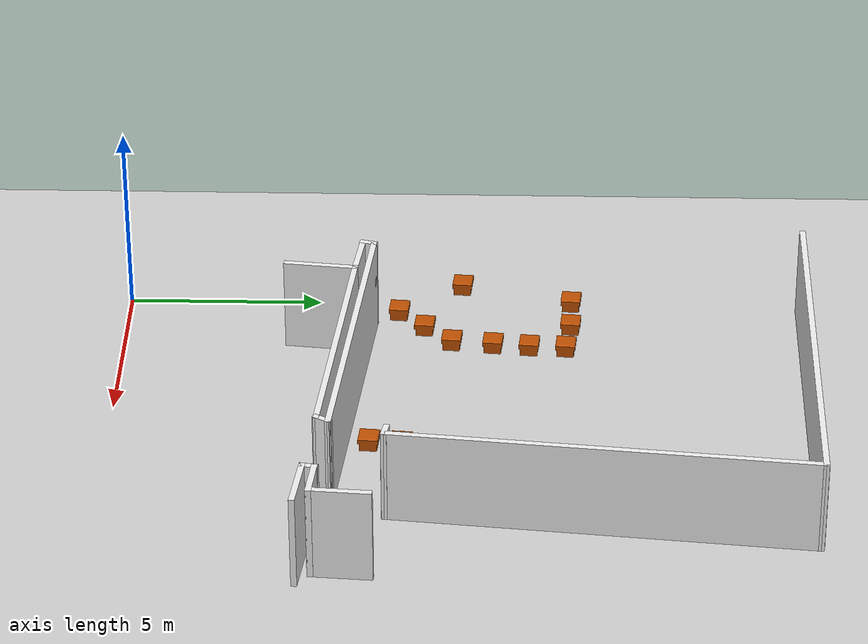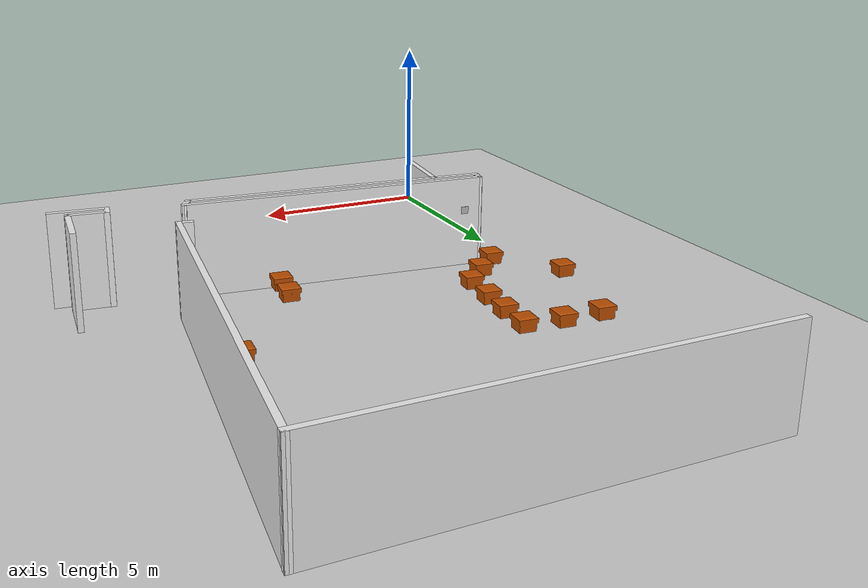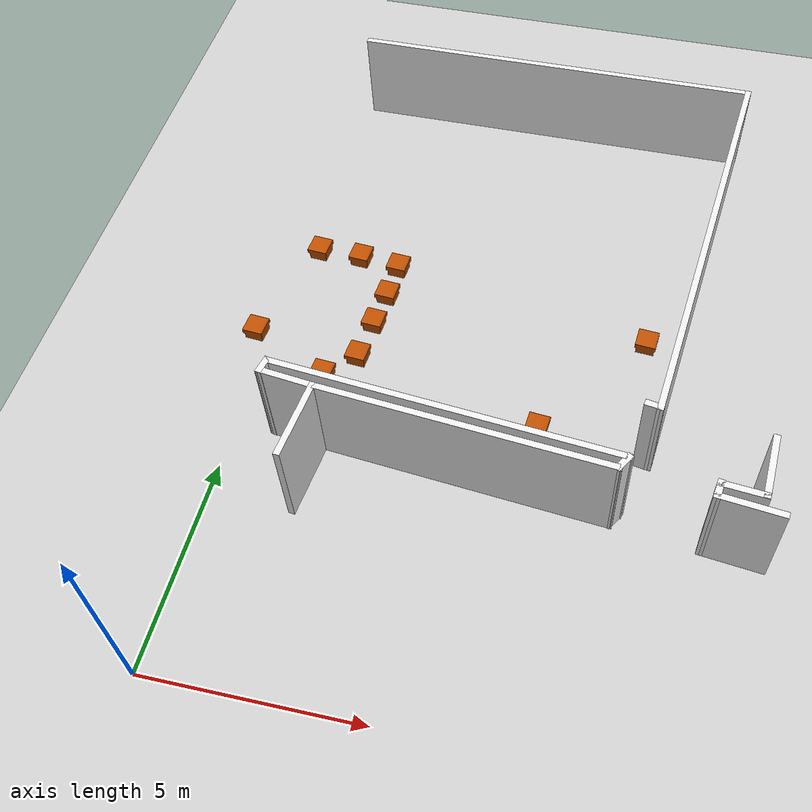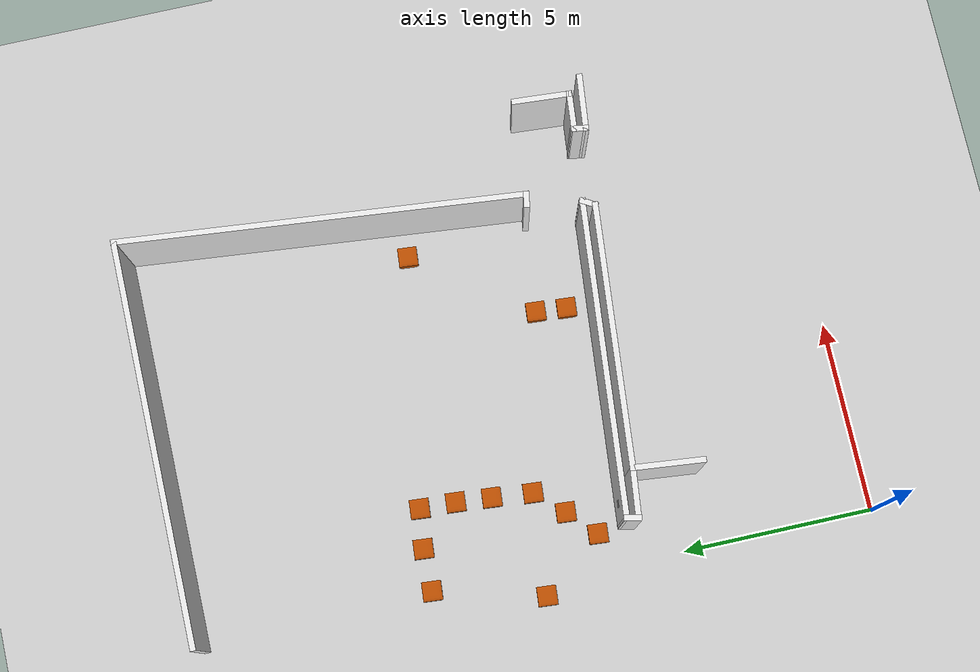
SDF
<sdf version="1.6">
 <world name="default">
  <model name="ground_plane">
   <static>1</static>
   <link name="link">
    <collision name="collision">
     <geometry><plane><normal>0 0 1</normal><size>100 100</size></plane></geometry>
     <surface><friction><ode><mu>100</mu><mu2>50</mu2></ode></friction></surface>
    </collision>
    <visual name="visual">
     <cast_shadows>0</cast_shadows>
     <geometry><plane><normal>0 0 1</normal><size>100 100</size></plane></geometry>
     <material>
      <script><uri>file://media/materials/scripts/gazebo.material</uri><name>Gazebo/Grey</name></script>
     </material>
    </visual>
   </link>
  </model>
  <model name="ucu_basic_frame.world">
   <link name="Wall_264">
    <pose>0.222214 2.68141 0 0 0 -1.79253</pose>
    <visual name="Wall_264_Visual">
     <pose>0 0 1.25 0 -0 0</pose>
     <geometry><box><size>0.445131 0.15 2.5</size></box></geometry>
     <material>
      <script><uri>file://media/materials/scripts/gazebo.material</uri><name>Gazebo/White</name></script>
      <ambient>1 1 1 1</ambient>
      <diffuse>1 1 1 1</diffuse>
      <specular>0 0 0 1</specular>
      <emissive>0 0 0 1</emissive>
     </material>
     <meta><layer>0</layer></meta>
    </visual>
    <collision name="Wall_264_Collision">
     <pose>0 0 1.25 0 -0 0</pose>
     <geometry><box><size>0.445131 0.15 2.5</size></box></geometry>
     <surface>
      <friction>
       <ode><mu>1</mu><mu2>1</mu2><fdir1>0 0 0</fdir1><slip1>0</slip1><slip2>0</slip2></ode>
       <torsional>
        <coefficient>1</coefficient>
        <patch_radius>0</patch_radius>
        <surface_radius>0</surface_radius>
        <use_patch_radius>1</use_patch_radius>
        <ode><slip>0</slip></ode>
       </torsional>
      </friction>
      <bounce><restitution_coefficient>0</restitution_coefficient><threshold>1e+06</threshold></bounce>
      <contact>
       <collide_without_contact>0</collide_without_contact>
       <collide_without_contact_bitmask>1</collide_without_contact_bitmask>
       <collide_bitmask>1</collide_bitmask>
       <ode>
        <soft_cfm>0</soft_cfm>
        <soft_erp>0.2</soft_erp>
        <kp>1e+13</kp>
        <kd>1</kd>
        <max_vel>0.01</max_vel>
        <min_depth>0</min_depth>
       </ode>
       <bullet>
        <split_impulse>1</split_impulse>
        <split_impulse_penetration_threshold>-0.01</split_impulse_penetration_threshold>
        <soft_cfm>0</soft_cfm>
        <soft_erp>0.2</soft_erp>
        <kp>1e+13</kp>
        <kd>1</kd>
       </bullet>
      </contact>
     </surface>
    </collision>
   </link>
   <link name="Wall_265">
    <pose>0.817825 2.46551 0 0 0 -0.1169</pose>
    <inertial>
     <mass>1</mass>
     <inertia><ixx>1</ixx><ixy>0</ixy><ixz>0</ixz><iyy>1</iyy><iyz>0</iyz><izz>1</izz></inertia>
    </inertial>
    <visual name="Wall_265_Visual">
     <pose>0 0 1.25 0 -0 0</pose>
     <geometry><box><size>1.38367 0.15 2.5</size></box></geometry>
     <material>
      <script><uri>file://media/materials/scripts/gazebo.material</uri><name>Gazebo/White</name></script>
      <ambient>1 1 1 1</ambient>
      <diffuse>1 1 1 1</diffuse>
      <specular>0 0 0 1</specular>
      <emissive>0 0 0 1</emissive>
      <shader type="vertex"><normal_map>__default__</normal_map></shader>
     </material>
     <meta><layer>0</layer></meta>
    </visual>
    <collision name="Wall_265_Collision">
     <pose>0 0 1.25 0 -0 0</pose>
     <geometry><box><size>1.38367 0.15 2.5</size></box></geometry>
     <surface>
      <friction>
       <ode><mu>1</mu><mu2>1</mu2><fdir1>0 0 0</fdir1><slip1>0</slip1><slip2>0</slip2></ode>
       <torsional>
        <coefficient>1</coefficient>
        <patch_radius>0</patch_radius>
        <surface_radius>0</surface_radius>
        <use_patch_radius>1</use_patch_radius>
        <ode><slip>0</slip></ode>
       </torsional>
      </friction>
      <bounce><restitution_coefficient>0</restitution_coefficient><threshold>1e+06</threshold></bounce>
      <contact>
       <collide_without_contact>0</collide_without_contact>
       <collide_without_contact_bitmask>1</collide_without_contact_bitmask>
       <collide_bitmask>1</collide_bitmask>
       <ode>
        <soft_cfm>0</soft_cfm>
        <soft_erp>0.2</soft_erp>
        <kp>1e+13</kp>
        <kd>1</kd>
        <max_vel>0.01</max_vel>
        <min_depth>0</min_depth>
       </ode>
       <bullet>
        <split_impulse>1</split_impulse>
        <split_impulse_penetration_threshold>-0.01</split_impulse_penetration_threshold>
        <soft_cfm>0</soft_cfm>
        <soft_erp>0.2</soft_erp>
        <kp>1e+13</kp>
        <kd>1</kd>
       </bullet>
      </contact>
     </surface>
    </collision>
   </link>
   <link name="Wall_267">
    <pose>4.30052 2.44738 0 0 0 -0.093156</pose>
    <visual name="Wall_267_Visual">
     <pose>0 0 1.25 0 -0 0</pose>
     <geometry><box><size>8.27695 0.15 2.5</size></box></geometry>
     <material>
      <script><uri>file://media/materials/scripts/gazebo.material</uri><name>Gazebo/White</name></script>
      <ambient>1 1 1 1</ambient>
      <diffuse>1 1 1 1</diffuse>
      <specular>0 0 0 1</specular>
      <emissive>0 0 0 1</emissive>
     </material>
     <meta><layer>0</layer></meta>
    </visual>
    <collision name="Wall_267_Collision">
     <pose>0 0 1.25 0 -0 0</pose>
     <geometry><box><size>8.27695 0.15 2.5</size></box></geometry>
     <surface>
      <friction>
       <ode><mu>1</mu><mu2>1</mu2><fdir1>0 0 0</fdir1><slip1>0</slip1><slip2>0</slip2></ode>
       <torsional>
        <coefficient>1</coefficient>
        <patch_radius>0</patch_radius>
        <surface_radius>0</surface_radius>
        <use_patch_radius>1</use_patch_radius>
        <ode><slip>0</slip></ode>
       </torsional>
      </friction>
      <bounce><restitution_coefficient>0</restitution_coefficient><threshold>1e+06</threshold></bounce>
      <contact>
       <collide_without_contact>0</collide_without_contact>
       <collide_without_contact_bitmask>1</collide_without_contact_bitmask>
       <collide_bitmask>1</collide_bitmask>
       <ode>
        <soft_cfm>0</soft_cfm>
        <soft_erp>0.2</soft_erp>
        <kp>1e+13</kp>
        <kd>1</kd>
        <max_vel>0.01</max_vel>
        <min_depth>0</min_depth>
       </ode>
       <bullet>
        <split_impulse>1</split_impulse>
        <split_impulse_penetration_threshold>-0.01</split_impulse_penetration_threshold>
        <soft_cfm>0</soft_cfm>
        <soft_erp>0.2</soft_erp>
        <kp>1e+13</kp>
        <kd>1</kd>
       </bullet>
      </contact>
     </surface>
    </collision>
   </link>
   <link name="Wall_268">
    <pose>8.26147 1.92273 0 0 0 -2.09559</pose>
    <visual name="Wall_268_Visual">
     <pose>0 0 1.25 0 -0 0</pose>
     <geometry><box><size>0.488919 0.15 2.5</size></box></geometry>
     <material>
      <script><uri>file://media/materials/scripts/gazebo.material</uri><name>Gazebo/White</name></script>
      <ambient>1 1 1 1</ambient>
      <diffuse>1 1 1 1</diffuse>
      <specular>0 0 0 1</specular>
      <emissive>0 0 0 1</emissive>
     </material>
     <meta><layer>0</layer></meta>
    </visual>
    <collision name="Wall_268_Collision">
     <pose>0 0 1.25 0 -0 0</pose>
     <geometry><box><size>0.488919 0.15 2.5</size></box></geometry>
     <surface>
      <friction>
       <ode><mu>1</mu><mu2>1</mu2><fdir1>0 0 0</fdir1><slip1>0</slip1><slip2>0</slip2></ode>
       <torsional>
        <coefficient>1</coefficient>
        <patch_radius>0</patch_radius>
        <surface_radius>0</surface_radius>
        <use_patch_radius>1</use_patch_radius>
        <ode><slip>0</slip></ode>
       </torsional>
      </friction>
      <bounce><restitution_coefficient>0</restitution_coefficient><threshold>1e+06</threshold></bounce>
      <contact>
       <collide_without_contact>0</collide_without_contact>
       <collide_without_contact_bitmask>1</collide_without_contact_bitmask>
       <collide_bitmask>1</collide_bitmask>
       <ode>
        <soft_cfm>0</soft_cfm>
        <soft_erp>0.2</soft_erp>
        <kp>1e+13</kp>
        <kd>1</kd>
        <max_vel>0.01</max_vel>
        <min_depth>0</min_depth>
       </ode>
       <bullet>
        <split_impulse>1</split_impulse>
        <split_impulse_penetration_threshold>-0.01</split_impulse_penetration_threshold>
        <soft_cfm>0</soft_cfm>
        <soft_erp>0.2</soft_erp>
        <kp>1e+13</kp>
        <kd>1</kd>
       </bullet>
      </contact>
     </surface>
    </collision>
   </link>
   <link name="Wall_269">
    <pose>4.80351 2.08482 0 0 -0 3.05031</pose>
    <visual name="Wall_269_Visual">
     <pose>0 0 1.25 0 -0 0</pose>
     <geometry><box><size>6.92432 0.15 2.5</size></box></geometry>
     <material>
      <script><uri>file://media/materials/scripts/gazebo.material</uri><name>Gazebo/White</name></script>
      <ambient>1 1 1 1</ambient>
      <diffuse>1 1 1 1</diffuse>
      <specular>0 0 0 1</specular>
      <emissive>0 0 0 1</emissive>
     </material>
     <meta><layer>0</layer></meta>
    </visual>
    <collision name="Wall_269_Collision">
     <pose>0 0 1.25 0 -0 0</pose>
     <geometry><box><size>6.92432 0.15 2.5</size></box></geometry>
     <surface>
      <friction>
       <ode><mu>1</mu><mu2>1</mu2><fdir1>0 0 0</fdir1><slip1>0</slip1><slip2>0</slip2></ode>
       <torsional>
        <coefficient>1</coefficient>
        <patch_radius>0</patch_radius>
        <surface_radius>0</surface_radius>
        <use_patch_radius>1</use_patch_radius>
        <ode><slip>0</slip></ode>
       </torsional>
      </friction>
      <bounce><restitution_coefficient>0</restitution_coefficient><threshold>1e+06</threshold></bounce>
      <contact>
       <collide_without_contact>0</collide_without_contact>
       <collide_without_contact_bitmask>1</collide_without_contact_bitmask>
       <collide_bitmask>1</collide_bitmask>
       <ode>
        <soft_cfm>0</soft_cfm>
        <soft_erp>0.2</soft_erp>
        <kp>1e+13</kp>
        <kd>1</kd>
        <max_vel>0.01</max_vel>
        <min_depth>0</min_depth>
       </ode>
       <bullet>
        <split_impulse>1</split_impulse>
        <split_impulse_penetration_threshold>-0.01</split_impulse_penetration_threshold>
        <soft_cfm>0</soft_cfm>
        <soft_erp>0.2</soft_erp>
        <kp>1e+13</kp>
        <kd>1</kd>
       </bullet>
      </contact>
     </surface>
    </collision>
   </link>
   <link name="Wall_272">
    <pose>1.33783 1.51364 0 0 0 -1.67567</pose>
    <visual name="Wall_272_Visual">
     <pose>0 0 1.25 0 -0 0</pose>
     <geometry><box><size>1.91958 0.15 2.5</size></box></geometry>
     <material>
      <script><uri>file://media/materials/scripts/gazebo.material</uri><name>Gazebo/White</name></script>
      <ambient>1 1 1 1</ambient>
      <diffuse>1 1 1 1</diffuse>
      <specular>0 0 0 1</specular>
      <emissive>0 0 0 1</emissive>
     </material>
     <meta><layer>0</layer></meta>
    </visual>
    <collision name="Wall_272_Collision">
     <pose>0 0 1.25 0 -0 0</pose>
     <geometry><box><size>1.91958 0.15 2.5</size></box></geometry>
     <surface>
      <friction>
       <ode><mu>1</mu><mu2>1</mu2><fdir1>0 0 0</fdir1><slip1>0</slip1><slip2>0</slip2></ode>
       <torsional>
        <coefficient>1</coefficient>
        <patch_radius>0</patch_radius>
        <surface_radius>0</surface_radius>
        <use_patch_radius>1</use_patch_radius>
        <ode><slip>0</slip></ode>
       </torsional>
      </friction>
      <bounce><restitution_coefficient>0</restitution_coefficient><threshold>1e+06</threshold></bounce>
      <contact>
       <collide_without_contact>0</collide_without_contact>
       <collide_without_contact_bitmask>1</collide_without_contact_bitmask>
       <collide_bitmask>1</collide_bitmask>
       <ode>
        <soft_cfm>0</soft_cfm>
        <soft_erp>0.2</soft_erp>
        <kp>1e+13</kp>
        <kd>1</kd>
        <max_vel>0.01</max_vel>
        <min_depth>0</min_depth>
       </ode>
       <bullet>
        <split_impulse>1</split_impulse>
        <split_impulse_penetration_threshold>-0.01</split_impulse_penetration_threshold>
        <soft_cfm>0</soft_cfm>
        <soft_erp>0.2</soft_erp>
        <kp>1e+13</kp>
        <kd>1</kd>
       </bullet>
      </contact>
     </surface>
    </collision>
   </link>
   <link name="Wall_309">
    <pose>10.8836 1.47565 0 0 -0 3.03093</pose>
    <visual name="Wall_309_Visual">
     <pose>0 0 1.25 0 -0 0</pose>
     <geometry><box><size>1.52674 0.15 2.5</size></box></geometry>
     <material>
      <script><uri>file://media/materials/scripts/gazebo.material</uri><name>Gazebo/White</name></script>
      <ambient>1 1 1 1</ambient>
      <diffuse>1 1 1 1</diffuse>
      <specular>0 0 0 1</specular>
      <emissive>0 0 0 1</emissive>
     </material>
     <meta><layer>0</layer></meta>
    </visual>
    <collision name="Wall_309_Collision">
     <pose>0 0 1.25 0 -0 0</pose>
     <geometry><box><size>1.52674 0.15 2.5</size></box></geometry>
     <surface>
      <friction>
       <ode><mu>1</mu><mu2>1</mu2><fdir1>0 0 0</fdir1><slip1>0</slip1><slip2>0</slip2></ode>
       <torsional>
        <coefficient>1</coefficient>
        <patch_radius>0</patch_radius>
        <surface_radius>0</surface_radius>
        <use_patch_radius>1</use_patch_radius>
        <ode><slip>0</slip></ode>
       </torsional>
      </friction>
      <bounce><restitution_coefficient>0</restitution_coefficient><threshold>1e+06</threshold></bounce>
      <contact>
       <collide_without_contact>0</collide_without_contact>
       <collide_without_contact_bitmask>1</collide_without_contact_bitmask>
       <collide_bitmask>1</collide_bitmask>
       <ode>
        <soft_cfm>0</soft_cfm>
        <soft_erp>0.2</soft_erp>
        <kp>1e+13</kp>
        <kd>1</kd>
        <max_vel>0.01</max_vel>
        <min_depth>0</min_depth>
       </ode>
       <bullet>
        <split_impulse>1</split_impulse>
        <split_impulse_penetration_threshold>-0.01</split_impulse_penetration_threshold>
        <soft_cfm>0</soft_cfm>
        <soft_erp>0.2</soft_erp>
        <kp>1e+13</kp>
        <kd>1</kd>
       </bullet>
      </contact>
     </surface>
    </collision>
   </link>
   <link name="Wall_310">
    <pose>10.2225 1.70746 0 0 -0 1.42134</pose>
    <visual name="Wall_310_Visual">
     <pose>0 0 1.25 0 -0 0</pose>
     <geometry><box><size>0.465001 0.15 2.5</size></box></geometry>
     <material>
      <script><uri>file://media/materials/scripts/gazebo.material</uri><name>Gazebo/White</name></script>
      <ambient>1 1 1 1</ambient>
      <diffuse>1 1 1 1</diffuse>
      <specular>0 0 0 1</specular>
      <emissive>0 0 0 1</emissive>
     </material>
     <meta><layer>0</layer></meta>
    </visual>
    <collision name="Wall_310_Collision">
     <pose>0 0 1.25 0 -0 0</pose>
     <geometry><box><size>0.465001 0.15 2.5</size></box></geometry>
     <surface>
      <friction>
       <ode><mu>1</mu><mu2>1</mu2><fdir1>0 0 0</fdir1><slip1>0</slip1><slip2>0</slip2></ode>
       <torsional>
        <coefficient>1</coefficient>
        <patch_radius>0</patch_radius>
        <surface_radius>0</surface_radius>
        <use_patch_radius>1</use_patch_radius>
        <ode><slip>0</slip></ode>
       </torsional>
      </friction>
      <bounce><restitution_coefficient>0</restitution_coefficient><threshold>1e+06</threshold></bounce>
      <contact>
       <collide_without_contact>0</collide_without_contact>
       <collide_without_contact_bitmask>1</collide_without_contact_bitmask>
       <collide_bitmask>1</collide_bitmask>
       <ode>
        <soft_cfm>0</soft_cfm>
        <soft_erp>0.2</soft_erp>
        <kp>1e+13</kp>
        <kd>1</kd>
        <max_vel>0.01</max_vel>
        <min_depth>0</min_depth>
       </ode>
       <bullet>
        <split_impulse>1</split_impulse>
        <split_impulse_penetration_threshold>-0.01</split_impulse_penetration_threshold>
        <soft_cfm>0</soft_cfm>
        <soft_erp>0.2</soft_erp>
        <kp>1e+13</kp>
        <kd>1</kd>
       </bullet>
      </contact>
     </surface>
    </collision>
   </link>
   <link name="Wall_311">
    <pose>10.7146 1.80243 0 0 0 -0.093477</pose>
    <visual name="Wall_311_Visual">
     <pose>0 0 1.25 0 -0 0</pose>
     <geometry><box><size>1.0913 0.15 2.5</size></box></geometry>
     <material>
      <script><uri>file://media/materials/scripts/gazebo.material</uri><name>Gazebo/White</name></script>
      <ambient>1 1 1 1</ambient>
      <diffuse>1 1 1 1</diffuse>
      <specular>0 0 0 1</specular>
      <emissive>0 0 0 1</emissive>
     </material>
     <meta><layer>0</layer></meta>
    </visual>
    <collision name="Wall_311_Collision">
     <pose>0 0 1.25 0 -0 0</pose>
     <geometry><box><size>1.0913 0.15 2.5</size></box></geometry>
     <surface>
      <friction>
       <ode><mu>1</mu><mu2>1</mu2><fdir1>0 0 0</fdir1><slip1>0</slip1><slip2>0</slip2></ode>
       <torsional>
        <coefficient>1</coefficient>
        <patch_radius>0</patch_radius>
        <surface_radius>0</surface_radius>
        <use_patch_radius>1</use_patch_radius>
        <ode><slip>0</slip></ode>
       </torsional>
      </friction>
      <bounce><restitution_coefficient>0</restitution_coefficient><threshold>1e+06</threshold></bounce>
      <contact>
       <collide_without_contact>0</collide_without_contact>
       <collide_without_contact_bitmask>1</collide_without_contact_bitmask>
       <collide_bitmask>1</collide_bitmask>
       <ode>
        <soft_cfm>0</soft_cfm>
        <soft_erp>0.2</soft_erp>
        <kp>1e+13</kp>
        <kd>1</kd>
        <max_vel>0.01</max_vel>
        <min_depth>0</min_depth>
       </ode>
       <bullet>
        <split_impulse>1</split_impulse>
        <split_impulse_penetration_threshold>-0.01</split_impulse_penetration_threshold>
        <soft_cfm>0</soft_cfm>
        <soft_erp>0.2</soft_erp>
        <kp>1e+13</kp>
        <kd>1</kd>
       </bullet>
      </contact>
     </surface>
    </collision>
   </link>
   <link name="Wall_313">
    <pose>11.2333 2.47933 0 0 -0 1.49967</pose>
    <visual name="Wall_313_Visual">
     <pose>0 0 1.25 0 -0 0</pose>
     <geometry><box><size>1.56155 0.15 2.5</size></box></geometry>
     <material>
      <script><uri>file://media/materials/scripts/gazebo.material</uri><name>Gazebo/White</name></script>
      <ambient>1 1 1 1</ambient>
      <diffuse>1 1 1 1</diffuse>
      <specular>0 0 0 1</specular>
      <emissive>0 0 0 1</emissive>
     </material>
     <meta><layer>0</layer></meta>
    </visual>
    <collision name="Wall_313_Collision">
     <pose>0 0 1.25 0 -0 0</pose>
     <geometry><box><size>1.56155 0.15 2.5</size></box></geometry>
     <surface>
      <friction>
       <ode><mu>1</mu><mu2>1</mu2><fdir1>0 0 0</fdir1><slip1>0</slip1><slip2>0</slip2></ode>
       <torsional>
        <coefficient>1</coefficient>
        <patch_radius>0</patch_radius>
        <surface_radius>0</surface_radius>
        <use_patch_radius>1</use_patch_radius>
        <ode><slip>0</slip></ode>
       </torsional>
      </friction>
      <bounce><restitution_coefficient>0</restitution_coefficient><threshold>1e+06</threshold></bounce>
      <contact>
       <collide_without_contact>0</collide_without_contact>
       <collide_without_contact_bitmask>1</collide_without_contact_bitmask>
       <collide_bitmask>1</collide_bitmask>
       <ode>
        <soft_cfm>0</soft_cfm>
        <soft_erp>0.2</soft_erp>
        <kp>1e+13</kp>
        <kd>1</kd>
        <max_vel>0.01</max_vel>
        <min_depth>0</min_depth>
       </ode>
       <bullet>
        <split_impulse>1</split_impulse>
        <split_impulse_penetration_threshold>-0.01</split_impulse_penetration_threshold>
        <soft_cfm>0</soft_cfm>
        <soft_erp>0.2</soft_erp>
        <kp>1e+13</kp>
        <kd>1</kd>
       </bullet>
      </contact>
     </surface>
    </collision>
   </link>
   <link name="Wall_320">
    <pose>4.68498 13.9093 0 0 -0 0.000568</pose>
    <visual name="Wall_320_Visual">
     <pose>0 0 1.25 0 -0 0</pose>
     <geometry><box><size>10.5597 0.15 2.5</size></box></geometry>
     <material>
      <script><uri>file://media/materials/scripts/gazebo.material</uri><name>Gazebo/White</name></script>
      <ambient>1 1 1 1</ambient>
      <diffuse>1 1 1 1</diffuse>
      <specular>0 0 0 1</specular>
      <emissive>0 0 0 1</emissive>
     </material>
     <meta><layer>0</layer></meta>
    </visual>
    <collision name="Wall_320_Collision">
     <pose>0 0 1.25 0 -0 0</pose>
     <geometry><box><size>10.5597 0.15 2.5</size></box></geometry>
     <surface>
      <friction>
       <ode><mu>1</mu><mu2>1</mu2><fdir1>0 0 0</fdir1><slip1>0</slip1><slip2>0</slip2></ode>
       <torsional>
        <coefficient>1</coefficient>
        <patch_radius>0</patch_radius>
        <surface_radius>0</surface_radius>
        <use_patch_radius>1</use_patch_radius>
        <ode><slip>0</slip></ode>
       </torsional>
      </friction>
      <bounce><restitution_coefficient>0</restitution_coefficient><threshold>1e+06</threshold></bounce>
      <contact>
       <collide_without_contact>0</collide_without_contact>
       <collide_without_contact_bitmask>1</collide_without_contact_bitmask>
       <collide_bitmask>1</collide_bitmask>
       <ode>
        <soft_cfm>0</soft_cfm>
        <soft_erp>0.2</soft_erp>
        <kp>1e+13</kp>
        <kd>1</kd>
        <max_vel>0.01</max_vel>
        <min_depth>0</min_depth>
       </ode>
       <bullet>
        <split_impulse>1</split_impulse>
        <split_impulse_penetration_threshold>-0.01</split_impulse_penetration_threshold>
        <soft_cfm>0</soft_cfm>
        <soft_erp>0.2</soft_erp>
        <kp>1e+13</kp>
        <kd>1</kd>
       </bullet>
      </contact>
     </surface>
    </collision>
   </link>
   <link name="Wall_323">
    <pose>8.69612 3.45178 0 0 0 -0.166846</pose>
    <visual name="Wall_323_Visual">
     <pose>0 0 1.25 0 -0 0</pose>
     <geometry><box><size>0.432266 0.15 2.5</size></box></geometry>
     <material>
      <script><uri>file://media/materials/scripts/gazebo.material</uri><name>Gazebo/White</name></script>
      <ambient>1 1 1 1</ambient>
      <diffuse>1 1 1 1</diffuse>
      <specular>0 0 0 1</specular>
      <emissive>0 0 0 1</emissive>
     </material>
     <meta><layer>0</layer></meta>
    </visual>
    <collision name="Wall_323_Collision">
     <pose>0 0 1.25 0 -0 0</pose>
     <geometry><box><size>0.432266 0.15 2.5</size></box></geometry>
     <surface>
      <friction>
       <ode><mu>1</mu><mu2>1</mu2><fdir1>0 0 0</fdir1><slip1>0</slip1><slip2>0</slip2></ode>
       <torsional>
        <coefficient>1</coefficient>
        <patch_radius>0</patch_radius>
        <surface_radius>0</surface_radius>
        <use_patch_radius>1</use_patch_radius>
        <ode><slip>0</slip></ode>
       </torsional>
      </friction>
      <bounce><restitution_coefficient>0</restitution_coefficient><threshold>1e+06</threshold></bounce>
      <contact>
       <collide_without_contact>0</collide_without_contact>
       <collide_without_contact_bitmask>1</collide_without_contact_bitmask>
       <collide_bitmask>1</collide_bitmask>
       <ode>
        <soft_cfm>0</soft_cfm>
        <soft_erp>0.2</soft_erp>
        <kp>1e+13</kp>
        <kd>1</kd>
        <max_vel>0.01</max_vel>
        <min_depth>0</min_depth>
       </ode>
       <bullet>
        <split_impulse>1</split_impulse>
        <split_impulse_penetration_threshold>-0.01</split_impulse_penetration_threshold>
        <soft_cfm>0</soft_cfm>
        <soft_erp>0.2</soft_erp>
        <kp>1e+13</kp>
        <kd>1</kd>
       </bullet>
      </contact>
     </surface>
    </collision>
   </link>
   <link name="Wall_326">
    <pose>9.36257 8.67029 0 0 0 -1.67105</pose>
    <visual name="Wall_326_Visual">
     <pose>0 0 1.25 0 -0 0</pose>
     <geometry><box><size>10.6868 0.15 2.5</size></box></geometry>
     <material>
      <script><uri>file://media/materials/scripts/gazebo.material</uri><name>Gazebo/White</name></script>
      <ambient>1 1 1 1</ambient>
      <diffuse>1 1 1 1</diffuse>
      <specular>0 0 0 1</specular>
      <emissive>0 0 0 1</emissive>
     </material>
     <meta><layer>0</layer></meta>
    </visual>
    <collision name="Wall_326_Collision">
     <pose>0 0 1.25 0 -0 0</pose>
     <geometry><box><size>10.6868 0.15 2.5</size></box></geometry>
     <surface>
      <friction>
       <ode><mu>1</mu><mu2>1</mu2><fdir1>0 0 0</fdir1><slip1>0</slip1><slip2>0</slip2></ode>
       <torsional>
        <coefficient>1</coefficient>
        <patch_radius>0</patch_radius>
        <surface_radius>0</surface_radius>
        <use_patch_radius>1</use_patch_radius>
        <ode><slip>0</slip></ode>
       </torsional>
      </friction>
      <bounce><restitution_coefficient>0</restitution_coefficient><threshold>1e+06</threshold></bounce>
      <contact>
       <collide_without_contact>0</collide_without_contact>
       <collide_without_contact_bitmask>1</collide_without_contact_bitmask>
       <collide_bitmask>1</collide_bitmask>
       <ode>
        <soft_cfm>0</soft_cfm>
        <soft_erp>0.2</soft_erp>
        <kp>1e+13</kp>
        <kd>1</kd>
        <max_vel>0.01</max_vel>
        <min_depth>0</min_depth>
       </ode>
       <bullet>
        <split_impulse>1</split_impulse>
        <split_impulse_penetration_threshold>-0.01</split_impulse_penetration_threshold>
        <soft_cfm>0</soft_cfm>
        <soft_erp>0.2</soft_erp>
        <kp>1e+13</kp>
        <kd>1</kd>
       </bullet>
      </contact>
     </surface>
    </collision>
   </link>
   <static>1</static>
   <pose>0.7577 3.6363 0 0 -0 0</pose>
  </model>
  <include>
   <uri>model://robert_gazebo/models/soft_armchair/orange</uri>
   <name>test_orange_1</name>
   <pose>6.87213 6.56217 0.379515 0 0 -1.64999</pose>
  </include>
  <include>
   <uri>model://robert_gazebo/models/soft_armchair/orange</uri>
   <name>test_orange_2</name>
   <pose>6.94535 7.3687 0.379515 0 0 -1.64999</pose>
  </include>
  <include>
   <uri>model://robert_gazebo/models/soft_armchair/orange</uri>
   <name>test_orange_3</name>
   <pose>9.10908 10.3366 0.379515 0 0 -1.64999</pose>
  </include>
  <include>
   <uri>model://robert_gazebo/models/soft_armchair/orange</uri>
   <name>test_orange_4</name>
   <pose>2.54778 11.4408 0.379515 0 0 -1.64999</pose>
  </include>
  <include>
   <uri>model://robert_gazebo/models/soft_armchair/orange</uri>
   <name>test_orange_5</name>
   <pose>1.51965 11.5662 0.379515 0 0 -1.64999</pose>
  </include>
  <include>
   <uri>model://robert_gazebo/models/soft_armchair/orange</uri>
   <name>test_orange_6</name>
   <pose>0.41743 11.5769 0.379515 0 0 -1.64999</pose>
  </include>
  <include>
   <uri>model://robert_gazebo/models/soft_armchair/orange</uri>
   <name>test_orange_7</name>
   <pose>0.921623 7.10102 0.379515 0 0 -1.64999</pose>
  </include>
  <include>
   <uri>model://robert_gazebo/models/soft_armchair/orange</uri>
   <name>test_orange_8</name>
   <pose>1.63931 7.78531 0.379515 0 0 -1.64999</pose>
  </include>
  <include>
   <uri>model://robert_gazebo/models/soft_armchair/orange</uri>
   <name>test_orange_9</name>
   <pose>2.3137 8.50098 0.379515 0 0 -1.64999</pose>
  </include>
  <include>
   <uri>model://robert_gazebo/models/soft_armchair/orange</uri>
   <name>test_orange_10</name>
   <pose>-0.344634 8.73077 0.379515 0 0 -1.64999</pose>
  </include>
  <include>
   <uri>model://robert_gazebo/models/soft_armchair/orange</uri>
   <name>test_orange_13</name>
   <pose>2.42503 9.56466 0.379515 0 0 -1.64999</pose>
  </include>
  <include>
   <uri>model://robert_gazebo/models/soft_armchair/orange</uri>
   <name>test_orange_14</name>
   <pose>2.51052 10.5013 0.379515 0 0 -1.64999</pose>
  </include>
  <include>
   <uri>model://robert_gazebo/models/qr/lectorium</uri>
   <name>qr_lectorium</name>
   <pose>1.46 6.52 1.6 0 0 -0.11</pose>
  </include>
 </world>
</sdf>
